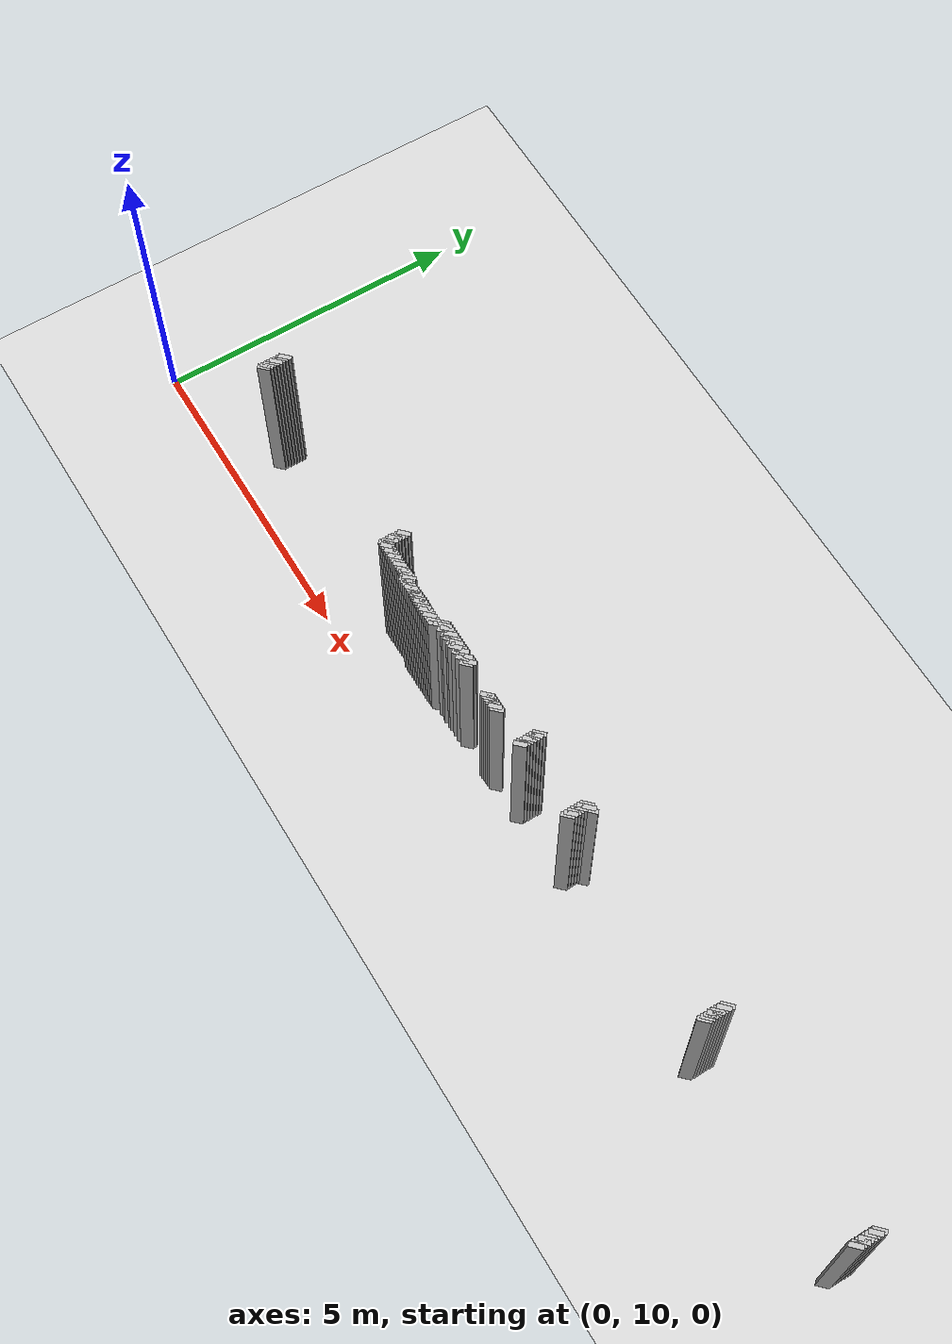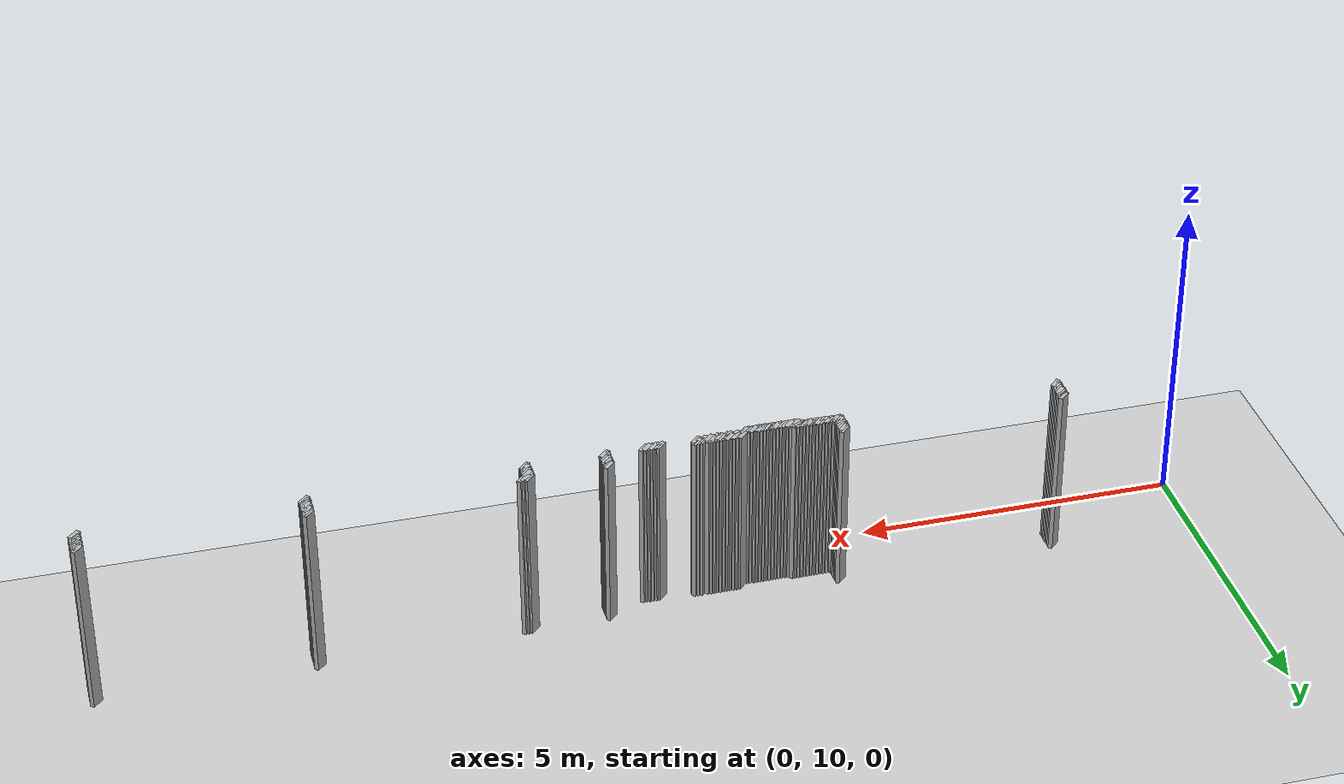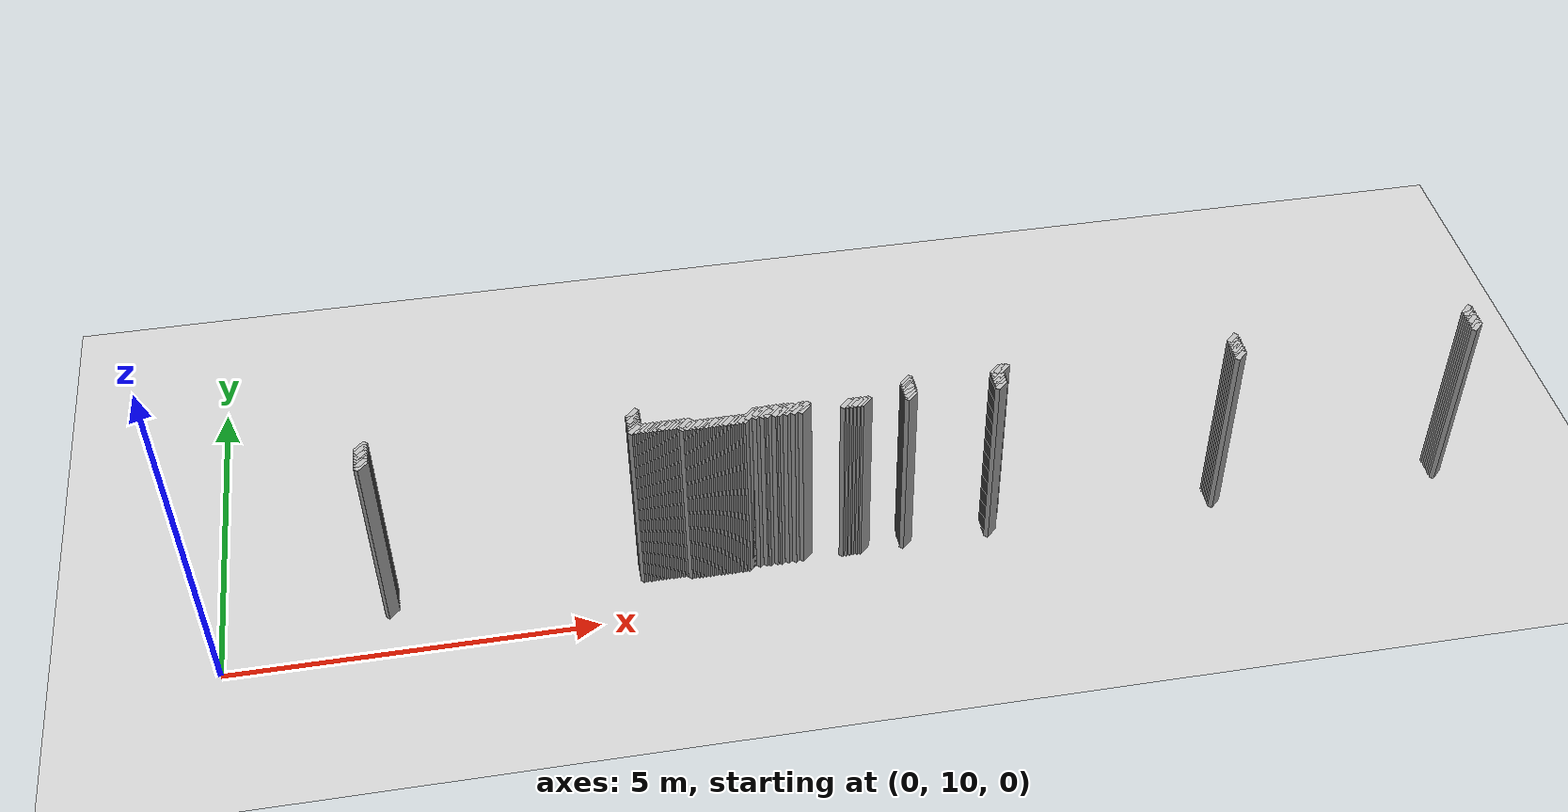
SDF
<sdf version="1.5">
 <world name="default">
  <include><uri>model://ground_plane</uri></include>
  <include><uri>model://sun</uri></include>
  <model name="grey_wall_1374">
   <static>1</static>
   <link name="link">
    <pose>13.75 11.100000000000001  1.4 0 0 -0.7853981633974483</pose>
    <collision name="collision">
     <geometry><box><size>0.07071067811865576 .2  2.8</size></box></geometry>
    </collision>
    <visual name="visual">
     <cast_shadows>0</cast_shadows>
     <geometry><box><size>0.07071067811865576 .2  2.8</size></box></geometry>
    </visual>
   </link>
  </model>
  <model name="grey_wall_1375">
   <static>1</static>
   <link name="link">
    <pose>17.05 11.100000000000001  1.4 0 0 -0.7853981633974838</pose>
    <collision name="collision">
     <geometry><box><size>0.07071067811865325 .2  2.8</size></box></geometry>
    </collision>
    <visual name="visual">
     <cast_shadows>0</cast_shadows>
     <geometry><box><size>0.07071067811865325 .2  2.8</size></box></geometry>
    </visual>
   </link>
  </model>
  <model name="grey_wall_1376">
   <static>1</static>
   <link name="link">
    <pose>2.25 11.05  1.4 0 0 -0.7853981633974572</pose>
    <collision name="collision">
     <geometry><box><size>0.07071067811865513 .2  2.8</size></box></geometry>
    </collision>
    <visual name="visual">
     <cast_shadows>0</cast_shadows>
     <geometry><box><size>0.07071067811865513 .2  2.8</size></box></geometry>
    </visual>
   </link>
  </model>
  <model name="grey_wall_1377">
   <static>1</static>
   <link name="link">
    <pose>5.7 11.05  1.4 0 0 -0.7853981633974483</pose>
    <collision name="collision">
     <geometry><box><size>0.07071067811865576 .2  2.8</size></box></geometry>
    </collision>
    <visual name="visual">
     <cast_shadows>0</cast_shadows>
     <geometry><box><size>0.07071067811865576 .2  2.8</size></box></geometry>
    </visual>
   </link>
  </model>
  <model name="grey_wall_1378">
   <static>1</static>
   <link name="link">
    <pose>9.3 11.05  1.4 0 0 -0.7853981633974483</pose>
    <collision name="collision">
     <geometry><box><size>0.07071067811865576 .2  2.8</size></box></geometry>
    </collision>
    <visual name="visual">
     <cast_shadows>0</cast_shadows>
     <geometry><box><size>0.07071067811865576 .2  2.8</size></box></geometry>
    </visual>
   </link>
  </model>
  <model name="grey_wall_1379">
   <static>1</static>
   <link name="link">
    <pose>10.5 11.05  1.4 0 0 -0.7853981633974483</pose>
    <collision name="collision">
     <geometry><box><size>0.07071067811865576 .2  2.8</size></box></geometry>
    </collision>
    <visual name="visual">
     <cast_shadows>0</cast_shadows>
     <geometry><box><size>0.07071067811865576 .2  2.8</size></box></geometry>
    </visual>
   </link>
  </model>
  <model name="grey_wall_1380">
   <static>1</static>
   <link name="link">
    <pose>10.55 11.05  1.4 0 0 -0.7853981633974483</pose>
    <collision name="collision">
     <geometry><box><size>0.07071067811865576 .2  2.8</size></box></geometry>
    </collision>
    <visual name="visual">
     <cast_shadows>0</cast_shadows>
     <geometry><box><size>0.07071067811865576 .2  2.8</size></box></geometry>
    </visual>
   </link>
  </model>
  <model name="grey_wall_1381">
   <static>1</static>
   <link name="link">
    <pose>10.600000000000001 11.05  1.4 0 0 -0.7853981633974483</pose>
    <collision name="collision">
     <geometry><box><size>0.07071067811865576 .2  2.8</size></box></geometry>
    </collision>
    <visual name="visual">
     <cast_shadows>0</cast_shadows>
     <geometry><box><size>0.07071067811865576 .2  2.8</size></box></geometry>
    </visual>
   </link>
  </model>
  <model name="grey_wall_1382">
   <static>1</static>
   <link name="link">
    <pose>13.75 11.05  1.4 0 0 -0.7853981633974483</pose>
    <collision name="collision">
     <geometry><box><size>0.07071067811865576 .2  2.8</size></box></geometry>
    </collision>
    <visual name="visual">
     <cast_shadows>0</cast_shadows>
     <geometry><box><size>0.07071067811865576 .2  2.8</size></box></geometry>
    </visual>
   </link>
  </model>
  <model name="grey_wall_1383">
   <static>1</static>
   <link name="link">
    <pose>17.05 11.05  1.4 0 0 -0.7853981633974838</pose>
    <collision name="collision">
     <geometry><box><size>0.07071067811865325 .2  2.8</size></box></geometry>
    </collision>
    <visual name="visual">
     <cast_shadows>0</cast_shadows>
     <geometry><box><size>0.07071067811865325 .2  2.8</size></box></geometry>
    </visual>
   </link>
  </model>
  <model name="grey_wall_1384">
   <static>1</static>
   <link name="link">
    <pose>2.25 11.0  1.4 0 0 -0.7853981633974572</pose>
    <collision name="collision">
     <geometry><box><size>0.07071067811865513 .2  2.8</size></box></geometry>
    </collision>
    <visual name="visual">
     <cast_shadows>0</cast_shadows>
     <geometry><box><size>0.07071067811865513 .2  2.8</size></box></geometry>
    </visual>
   </link>
  </model>
  <model name="grey_wall_1385">
   <static>1</static>
   <link name="link">
    <pose>5.7 11.0  1.4 0 0 -0.7853981633974483</pose>
    <collision name="collision">
     <geometry><box><size>0.07071067811865576 .2  2.8</size></box></geometry>
    </collision>
    <visual name="visual">
     <cast_shadows>0</cast_shadows>
     <geometry><box><size>0.07071067811865576 .2  2.8</size></box></geometry>
    </visual>
   </link>
  </model>
  <model name="grey_wall_1386">
   <static>1</static>
   <link name="link">
    <pose>9.3 11.0  1.4 0 0 -0.7853981633974483</pose>
    <collision name="collision">
     <geometry><box><size>0.07071067811865576 .2  2.8</size></box></geometry>
    </collision>
    <visual name="visual">
     <cast_shadows>0</cast_shadows>
     <geometry><box><size>0.07071067811865576 .2  2.8</size></box></geometry>
    </visual>
   </link>
  </model>
  <model name="grey_wall_1387">
   <static>1</static>
   <link name="link">
    <pose>10.5 11.0  1.4 0 0 -0.7853981633974483</pose>
    <collision name="collision">
     <geometry><box><size>0.07071067811865576 .2  2.8</size></box></geometry>
    </collision>
    <visual name="visual">
     <cast_shadows>0</cast_shadows>
     <geometry><box><size>0.07071067811865576 .2  2.8</size></box></geometry>
    </visual>
   </link>
  </model>
  <model name="grey_wall_1388">
   <static>1</static>
   <link name="link">
    <pose>13.75 11.0  1.4 0 0 -0.7853981633974483</pose>
    <collision name="collision">
     <geometry><box><size>0.07071067811865576 .2  2.8</size></box></geometry>
    </collision>
    <visual name="visual">
     <cast_shadows>0</cast_shadows>
     <geometry><box><size>0.07071067811865576 .2  2.8</size></box></geometry>
    </visual>
   </link>
  </model>
  <model name="grey_wall_1389">
   <static>1</static>
   <link name="link">
    <pose>17.05 11.0  1.4 0 0 -0.7853981633974838</pose>
    <collision name="collision">
     <geometry><box><size>0.07071067811865325 .2  2.8</size></box></geometry>
    </collision>
    <visual name="visual">
     <cast_shadows>0</cast_shadows>
     <geometry><box><size>0.07071067811865325 .2  2.8</size></box></geometry>
    </visual>
   </link>
  </model>
  <model name="grey_wall_1390">
   <static>1</static>
   <link name="link">
    <pose>2.25 10.950000000000001  1.4 0 0 -0.7853981633974572</pose>
    <collision name="collision">
     <geometry><box><size>0.07071067811865513 .2  2.8</size></box></geometry>
    </collision>
    <visual name="visual">
     <cast_shadows>0</cast_shadows>
     <geometry><box><size>0.07071067811865513 .2  2.8</size></box></geometry>
    </visual>
   </link>
  </model>
  <model name="grey_wall_1391">
   <static>1</static>
   <link name="link">
    <pose>5.7 10.950000000000001  1.4 0 0 -0.7853981633974483</pose>
    <collision name="collision">
     <geometry><box><size>0.07071067811865576 .2  2.8</size></box></geometry>
    </collision>
    <visual name="visual">
     <cast_shadows>0</cast_shadows>
     <geometry><box><size>0.07071067811865576 .2  2.8</size></box></geometry>
    </visual>
   </link>
  </model>
  <model name="grey_wall_1392">
   <static>1</static>
   <link name="link">
    <pose>9.3 10.950000000000001  1.4 0 0 -0.7853981633974483</pose>
    <collision name="collision">
     <geometry><box><size>0.07071067811865576 .2  2.8</size></box></geometry>
    </collision>
    <visual name="visual">
     <cast_shadows>0</cast_shadows>
     <geometry><box><size>0.07071067811865576 .2  2.8</size></box></geometry>
    </visual>
   </link>
  </model>
  <model name="grey_wall_1393">
   <static>1</static>
   <link name="link">
    <pose>10.5 10.950000000000001  1.4 0 0 -0.7853981633974483</pose>
    <collision name="collision">
     <geometry><box><size>0.07071067811865576 .2  2.8</size></box></geometry>
    </collision>
    <visual name="visual">
     <cast_shadows>0</cast_shadows>
     <geometry><box><size>0.07071067811865576 .2  2.8</size></box></geometry>
    </visual>
   </link>
  </model>
  <model name="grey_wall_1394">
   <static>1</static>
   <link name="link">
    <pose>13.75 10.950000000000001  1.4 0 0 -0.7853981633974483</pose>
    <collision name="collision">
     <geometry><box><size>0.07071067811865576 .2  2.8</size></box></geometry>
    </collision>
    <visual name="visual">
     <cast_shadows>0</cast_shadows>
     <geometry><box><size>0.07071067811865576 .2  2.8</size></box></geometry>
    </visual>
   </link>
  </model>
  <model name="grey_wall_1395">
   <static>1</static>
   <link name="link">
    <pose>17.05 10.950000000000001  1.4 0 0 -0.7853981633974838</pose>
    <collision name="collision">
     <geometry><box><size>0.07071067811865325 .2  2.8</size></box></geometry>
    </collision>
    <visual name="visual">
     <cast_shadows>0</cast_shadows>
     <geometry><box><size>0.07071067811865325 .2  2.8</size></box></geometry>
    </visual>
   </link>
  </model>
  <model name="grey_wall_1396">
   <static>1</static>
   <link name="link">
    <pose>2.25 10.9  1.4 0 0 -0.7853981633974572</pose>
    <collision name="collision">
     <geometry><box><size>0.07071067811865513 .2  2.8</size></box></geometry>
    </collision>
    <visual name="visual">
     <cast_shadows>0</cast_shadows>
     <geometry><box><size>0.07071067811865513 .2  2.8</size></box></geometry>
    </visual>
   </link>
  </model>
  <model name="grey_wall_1397">
   <static>1</static>
   <link name="link">
    <pose>5.7 10.9  1.4 0 0 -0.7853981633974483</pose>
    <collision name="collision">
     <geometry><box><size>0.07071067811865576 .2  2.8</size></box></geometry>
    </collision>
    <visual name="visual">
     <cast_shadows>0</cast_shadows>
     <geometry><box><size>0.07071067811865576 .2  2.8</size></box></geometry>
    </visual>
   </link>
  </model>
  <model name="grey_wall_1398">
   <static>1</static>
   <link name="link">
    <pose>9.3 10.9  1.4 0 0 -0.7853981633974483</pose>
    <collision name="collision">
     <geometry><box><size>0.07071067811865576 .2  2.8</size></box></geometry>
    </collision>
    <visual name="visual">
     <cast_shadows>0</cast_shadows>
     <geometry><box><size>0.07071067811865576 .2  2.8</size></box></geometry>
    </visual>
   </link>
  </model>
  <model name="grey_wall_1399">
   <static>1</static>
   <link name="link">
    <pose>10.5 10.9  1.4 0 0 -0.7853981633974483</pose>
    <collision name="collision">
     <geometry><box><size>0.07071067811865576 .2  2.8</size></box></geometry>
    </collision>
    <visual name="visual">
     <cast_shadows>0</cast_shadows>
     <geometry><box><size>0.07071067811865576 .2  2.8</size></box></geometry>
    </visual>
   </link>
  </model>
  <model name="grey_wall_1400">
   <static>1</static>
   <link name="link">
    <pose>13.75 10.9  1.4 0 0 -0.7853981633974483</pose>
    <collision name="collision">
     <geometry><box><size>0.07071067811865576 .2  2.8</size></box></geometry>
    </collision>
    <visual name="visual">
     <cast_shadows>0</cast_shadows>
     <geometry><box><size>0.07071067811865576 .2  2.8</size></box></geometry>
    </visual>
   </link>
  </model>
  <model name="grey_wall_1401">
   <static>1</static>
   <link name="link">
    <pose>17.05 10.9  1.4 0 0 -0.7853981633974838</pose>
    <collision name="collision">
     <geometry><box><size>0.07071067811865325 .2  2.8</size></box></geometry>
    </collision>
    <visual name="visual">
     <cast_shadows>0</cast_shadows>
     <geometry><box><size>0.07071067811865325 .2  2.8</size></box></geometry>
    </visual>
   </link>
  </model>
  <model name="grey_wall_1402">
   <static>1</static>
   <link name="link">
    <pose>2.25 10.850000000000001  1.4 0 0 -0.7853981633974572</pose>
    <collision name="collision">
     <geometry><box><size>0.07071067811865513 .2  2.8</size></box></geometry>
    </collision>
    <visual name="visual">
     <cast_shadows>0</cast_shadows>
     <geometry><box><size>0.07071067811865513 .2  2.8</size></box></geometry>
    </visual>
   </link>
  </model>
  <model name="grey_wall_1403">
   <static>1</static>
   <link name="link">
    <pose>5.7 10.850000000000001  1.4 0 0 -0.7853981633974483</pose>
    <collision name="collision">
     <geometry><box><size>0.07071067811865576 .2  2.8</size></box></geometry>
    </collision>
    <visual name="visual">
     <cast_shadows>0</cast_shadows>
     <geometry><box><size>0.07071067811865576 .2  2.8</size></box></geometry>
    </visual>
   </link>
  </model>
  <model name="grey_wall_1404">
   <static>1</static>
   <link name="link">
    <pose>9.3 10.850000000000001  1.4 0 0 -0.7853981633974483</pose>
    <collision name="collision">
     <geometry><box><size>0.07071067811865576 .2  2.8</size></box></geometry>
    </collision>
    <visual name="visual">
     <cast_shadows>0</cast_shadows>
     <geometry><box><size>0.07071067811865576 .2  2.8</size></box></geometry>
    </visual>
   </link>
  </model>
  <model name="grey_wall_1405">
   <static>1</static>
   <link name="link">
    <pose>10.5 10.850000000000001  1.4 0 0 -0.7853981633974483</pose>
    <collision name="collision">
     <geometry><box><size>0.07071067811865576 .2  2.8</size></box></geometry>
    </collision>
    <visual name="visual">
     <cast_shadows>0</cast_shadows>
     <geometry><box><size>0.07071067811865576 .2  2.8</size></box></geometry>
    </visual>
   </link>
  </model>
  <model name="grey_wall_1406">
   <static>1</static>
   <link name="link">
    <pose>13.75 10.850000000000001  1.4 0 0 -0.7853981633974483</pose>
    <collision name="collision">
     <geometry><box><size>0.07071067811865576 .2  2.8</size></box></geometry>
    </collision>
    <visual name="visual">
     <cast_shadows>0</cast_shadows>
     <geometry><box><size>0.07071067811865576 .2  2.8</size></box></geometry>
    </visual>
   </link>
  </model>
  <model name="grey_wall_1407">
   <static>1</static>
   <link name="link">
    <pose>17.05 10.850000000000001  1.4 0 0 -0.7853981633974838</pose>
    <collision name="collision">
     <geometry><box><size>0.07071067811865325 .2  2.8</size></box></geometry>
    </collision>
    <visual name="visual">
     <cast_shadows>0</cast_shadows>
     <geometry><box><size>0.07071067811865325 .2  2.8</size></box></geometry>
    </visual>
   </link>
  </model>
  <model name="grey_wall_1408">
   <static>1</static>
   <link name="link">
    <pose>2.25 10.8  1.4 0 0 -0.7853981633974572</pose>
    <collision name="collision">
     <geometry><box><size>0.07071067811865513 .2  2.8</size></box></geometry>
    </collision>
    <visual name="visual">
     <cast_shadows>0</cast_shadows>
     <geometry><box><size>0.07071067811865513 .2  2.8</size></box></geometry>
    </visual>
   </link>
  </model>
  <model name="grey_wall_1409">
   <static>1</static>
   <link name="link">
    <pose>5.7 10.8  1.4 0 0 -0.7853981633974483</pose>
    <collision name="collision">
     <geometry><box><size>0.07071067811865576 .2  2.8</size></box></geometry>
    </collision>
    <visual name="visual">
     <cast_shadows>0</cast_shadows>
     <geometry><box><size>0.07071067811865576 .2  2.8</size></box></geometry>
    </visual>
   </link>
  </model>
  <model name="grey_wall_1410">
   <static>1</static>
   <link name="link">
    <pose>7.2 10.8  1.4 0 0 -0.7853981633974483</pose>
    <collision name="collision">
     <geometry><box><size>0.07071067811865576 .2  2.8</size></box></geometry>
    </collision>
    <visual name="visual">
     <cast_shadows>0</cast_shadows>
     <geometry><box><size>0.07071067811865576 .2  2.8</size></box></geometry>
    </visual>
   </link>
  </model>
  <model name="grey_wall_1411">
   <static>1</static>
   <link name="link">
    <pose>7.25 10.8  1.4 0 0 -0.7853981633974483</pose>
    <collision name="collision">
     <geometry><box><size>0.07071067811865576 .2  2.8</size></box></geometry>
    </collision>
    <visual name="visual">
     <cast_shadows>0</cast_shadows>
     <geometry><box><size>0.07071067811865576 .2  2.8</size></box></geometry>
    </visual>
   </link>
  </model>
  <model name="grey_wall_1412">
   <static>1</static>
   <link name="link">
    <pose>7.300000000000001 10.8  1.4 0 0 -0.7853981633974483</pose>
    <collision name="collision">
     <geometry><box><size>0.07071067811865576 .2  2.8</size></box></geometry>
    </collision>
    <visual name="visual">
     <cast_shadows>0</cast_shadows>
     <geometry><box><size>0.07071067811865576 .2  2.8</size></box></geometry>
    </visual>
   </link>
  </model>
  <model name="grey_wall_1413">
   <static>1</static>
   <link name="link">
    <pose>7.3500000000000005 10.8  1.4 0 0 -0.7853981633974483</pose>
    <collision name="collision">
     <geometry><box><size>0.07071067811865576 .2  2.8</size></box></geometry>
    </collision>
    <visual name="visual">
     <cast_shadows>0</cast_shadows>
     <geometry><box><size>0.07071067811865576 .2  2.8</size></box></geometry>
    </visual>
   </link>
  </model>
  <model name="grey_wall_1414">
   <static>1</static>
   <link name="link">
    <pose>7.4 10.8  1.4 0 0 -0.7853981633974483</pose>
    <collision name="collision">
     <geometry><box><size>0.07071067811865576 .2  2.8</size></box></geometry>
    </collision>
    <visual name="visual">
     <cast_shadows>0</cast_shadows>
     <geometry><box><size>0.07071067811865576 .2  2.8</size></box></geometry>
    </visual>
   </link>
  </model>
  <model name="grey_wall_1415">
   <static>1</static>
   <link name="link">
    <pose>7.45 10.8  1.4 0 0 -0.7853981633974483</pose>
    <collision name="collision">
     <geometry><box><size>0.07071067811865576 .2  2.8</size></box></geometry>
    </collision>
    <visual name="visual">
     <cast_shadows>0</cast_shadows>
     <geometry><box><size>0.07071067811865576 .2  2.8</size></box></geometry>
    </visual>
   </link>
  </model>
  <model name="grey_wall_1416">
   <static>1</static>
   <link name="link">
    <pose>7.5 10.8  1.4 0 0 -0.7853981633974483</pose>
    <collision name="collision">
     <geometry><box><size>0.07071067811865576 .2  2.8</size></box></geometry>
    </collision>
    <visual name="visual">
     <cast_shadows>0</cast_shadows>
     <geometry><box><size>0.07071067811865576 .2  2.8</size></box></geometry>
    </visual>
   </link>
  </model>
  <model name="grey_wall_1417">
   <static>1</static>
   <link name="link">
    <pose>7.550000000000001 10.8  1.4 0 0 -0.7853981633974483</pose>
    <collision name="collision">
     <geometry><box><size>0.07071067811865576 .2  2.8</size></box></geometry>
    </collision>
    <visual name="visual">
     <cast_shadows>0</cast_shadows>
     <geometry><box><size>0.07071067811865576 .2  2.8</size></box></geometry>
    </visual>
   </link>
  </model>
  <model name="grey_wall_1418">
   <static>1</static>
   <link name="link">
    <pose>7.6000000000000005 10.8  1.4 0 0 -0.7853981633974483</pose>
    <collision name="collision">
     <geometry><box><size>0.07071067811865576 .2  2.8</size></box></geometry>
    </collision>
    <visual name="visual">
     <cast_shadows>0</cast_shadows>
     <geometry><box><size>0.07071067811865576 .2  2.8</size></box></geometry>
    </visual>
   </link>
  </model>
  <model name="grey_wall_1419">
   <static>1</static>
   <link name="link">
    <pose>7.65 10.8  1.4 0 0 -0.7853981633974483</pose>
    <collision name="collision">
     <geometry><box><size>0.07071067811865576 .2  2.8</size></box></geometry>
    </collision>
    <visual name="visual">
     <cast_shadows>0</cast_shadows>
     <geometry><box><size>0.07071067811865576 .2  2.8</size></box></geometry>
    </visual>
   </link>
  </model>
  <model name="grey_wall_1420">
   <static>1</static>
   <link name="link">
    <pose>7.7 10.8  1.4 0 0 -0.7853981633974483</pose>
    <collision name="collision">
     <geometry><box><size>0.07071067811865576 .2  2.8</size></box></geometry>
    </collision>
    <visual name="visual">
     <cast_shadows>0</cast_shadows>
     <geometry><box><size>0.07071067811865576 .2  2.8</size></box></geometry>
    </visual>
   </link>
  </model>
  <model name="grey_wall_1421">
   <static>1</static>
   <link name="link">
    <pose>7.800000000000001 10.8  1.4 0 0 -0.7853981633974483</pose>
    <collision name="collision">
     <geometry><box><size>0.07071067811865576 .2  2.8</size></box></geometry>
    </collision>
    <visual name="visual">
     <cast_shadows>0</cast_shadows>
     <geometry><box><size>0.07071067811865576 .2  2.8</size></box></geometry>
    </visual>
   </link>
  </model>
  <model name="grey_wall_1422">
   <static>1</static>
   <link name="link">
    <pose>7.8500000000000005 10.8  1.4 0 0 -0.7853981633974483</pose>
    <collision name="collision">
     <geometry><box><size>0.07071067811865576 .2  2.8</size></box></geometry>
    </collision>
    <visual name="visual">
     <cast_shadows>0</cast_shadows>
     <geometry><box><size>0.07071067811865576 .2  2.8</size></box></geometry>
    </visual>
   </link>
  </model>
  <model name="grey_wall_1423">
   <static>1</static>
   <link name="link">
    <pose>7.9 10.8  1.4 0 0 -0.7853981633974483</pose>
    <collision name="collision">
     <geometry><box><size>0.07071067811865576 .2  2.8</size></box></geometry>
    </collision>
    <visual name="visual">
     <cast_shadows>0</cast_shadows>
     <geometry><box><size>0.07071067811865576 .2  2.8</size></box></geometry>
    </visual>
   </link>
  </model>
  <model name="grey_wall_1424">
   <static>1</static>
   <link name="link">
    <pose>9.3 10.8  1.4 0 0 -0.7853981633974483</pose>
    <collision name="collision">
     <geometry><box><size>0.07071067811865576 .2  2.8</size></box></geometry>
    </collision>
    <visual name="visual">
     <cast_shadows>0</cast_shadows>
     <geometry><box><size>0.07071067811865576 .2  2.8</size></box></geometry>
    </visual>
   </link>
  </model>
  <model name="grey_wall_1425">
   <static>1</static>
   <link name="link">
    <pose>10.5 10.8  1.4 0 0 -0.7853981633974483</pose>
    <collision name="collision">
     <geometry><box><size>0.07071067811865576 .2  2.8</size></box></geometry>
    </collision>
    <visual name="visual">
     <cast_shadows>0</cast_shadows>
     <geometry><box><size>0.07071067811865576 .2  2.8</size></box></geometry>
    </visual>
   </link>
  </model>
  <model name="grey_wall_1426">
   <static>1</static>
   <link name="link">
    <pose>13.75 10.8  1.4 0 0 -0.7853981633974483</pose>
    <collision name="collision">
     <geometry><box><size>0.07071067811865576 .2  2.8</size></box></geometry>
    </collision>
    <visual name="visual">
     <cast_shadows>0</cast_shadows>
     <geometry><box><size>0.07071067811865576 .2  2.8</size></box></geometry>
    </visual>
   </link>
  </model>
  <model name="grey_wall_1427">
   <static>1</static>
   <link name="link">
    <pose>17.05 10.8  1.4 0 0 -0.7853981633974838</pose>
    <collision name="collision">
     <geometry><box><size>0.07071067811865325 .2  2.8</size></box></geometry>
    </collision>
    <visual name="visual">
     <cast_shadows>0</cast_shadows>
     <geometry><box><size>0.07071067811865325 .2  2.8</size></box></geometry>
    </visual>
   </link>
  </model>
  <model name="grey_wall_1428">
   <static>1</static>
   <link name="link">
    <pose>2.25 10.75  1.4 0 0 -0.7853981633974572</pose>
    <collision name="collision">
     <geometry><box><size>0.07071067811865513 .2  2.8</size></box></geometry>
    </collision>
    <visual name="visual">
     <cast_shadows>0</cast_shadows>
     <geometry><box><size>0.07071067811865513 .2  2.8</size></box></geometry>
    </visual>
   </link>
  </model>
  <model name="grey_wall_1429">
   <static>1</static>
   <link name="link">
    <pose>5.7 10.75  1.4 0 0 -0.7853981633974483</pose>
    <collision name="collision">
     <geometry><box><size>0.07071067811865576 .2  2.8</size></box></geometry>
    </collision>
    <visual name="visual">
     <cast_shadows>0</cast_shadows>
     <geometry><box><size>0.07071067811865576 .2  2.8</size></box></geometry>
    </visual>
   </link>
  </model>
  <model name="grey_wall_1430">
   <static>1</static>
   <link name="link">
    <pose>5.75 10.75  1.4 0 0 -0.7853981633974483</pose>
    <collision name="collision">
     <geometry><box><size>0.07071067811865576 .2  2.8</size></box></geometry>
    </collision>
    <visual name="visual">
     <cast_shadows>0</cast_shadows>
     <geometry><box><size>0.07071067811865576 .2  2.8</size></box></geometry>
    </visual>
   </link>
  </model>
  <model name="grey_wall_1431">
   <static>1</static>
   <link name="link">
    <pose>5.800000000000001 10.75  1.4 0 0 -0.7853981633974483</pose>
    <collision name="collision">
     <geometry><box><size>0.07071067811865576 .2  2.8</size></box></geometry>
    </collision>
    <visual name="visual">
     <cast_shadows>0</cast_shadows>
     <geometry><box><size>0.07071067811865576 .2  2.8</size></box></geometry>
    </visual>
   </link>
  </model>
  <model name="grey_wall_1432">
   <static>1</static>
   <link name="link">
    <pose>5.8500000000000005 10.75  1.4 0 0 -0.7853981633974483</pose>
    <collision name="collision">
     <geometry><box><size>0.07071067811865576 .2  2.8</size></box></geometry>
    </collision>
    <visual name="visual">
     <cast_shadows>0</cast_shadows>
     <geometry><box><size>0.07071067811865576 .2  2.8</size></box></geometry>
    </visual>
   </link>
  </model>
  <model name="grey_wall_1433">
   <static>1</static>
   <link name="link">
    <pose>5.9 10.75  1.4 0 0 -0.7853981633974483</pose>
    <collision name="collision">
     <geometry><box><size>0.07071067811865576 .2  2.8</size></box></geometry>
    </collision>
    <visual name="visual">
     <cast_shadows>0</cast_shadows>
     <geometry><box><size>0.07071067811865576 .2  2.8</size></box></geometry>
    </visual>
   </link>
  </model>
  <model name="grey_wall_1434">
   <static>1</static>
   <link name="link">
    <pose>5.95 10.75  1.4 0 0 -0.7853981633974483</pose>
    <collision name="collision">
     <geometry><box><size>0.07071067811865576 .2  2.8</size></box></geometry>
    </collision>
    <visual name="visual">
     <cast_shadows>0</cast_shadows>
     <geometry><box><size>0.07071067811865576 .2  2.8</size></box></geometry>
    </visual>
   </link>
  </model>
  <model name="grey_wall_1435">
   <static>1</static>
   <link name="link">
    <pose>6.0 10.75  1.4 0 0 -0.7853981633974483</pose>
    <collision name="collision">
     <geometry><box><size>0.07071067811865576 .2  2.8</size></box></geometry>
    </collision>
    <visual name="visual">
     <cast_shadows>0</cast_shadows>
     <geometry><box><size>0.07071067811865576 .2  2.8</size></box></geometry>
    </visual>
   </link>
  </model>
  <model name="grey_wall_1436">
   <static>1</static>
   <link name="link">
    <pose>6.050000000000001 10.75  1.4 0 0 -0.7853981633974483</pose>
    <collision name="collision">
     <geometry><box><size>0.07071067811865576 .2  2.8</size></box></geometry>
    </collision>
    <visual name="visual">
     <cast_shadows>0</cast_shadows>
     <geometry><box><size>0.07071067811865576 .2  2.8</size></box></geometry>
    </visual>
   </link>
  </model>
  <model name="grey_wall_1437">
   <static>1</static>
   <link name="link">
    <pose>6.1000000000000005 10.75  1.4 0 0 -0.7853981633974483</pose>
    <collision name="collision">
     <geometry><box><size>0.07071067811865576 .2  2.8</size></box></geometry>
    </collision>
    <visual name="visual">
     <cast_shadows>0</cast_shadows>
     <geometry><box><size>0.07071067811865576 .2  2.8</size></box></geometry>
    </visual>
   </link>
  </model>
  <model name="grey_wall_1438">
   <static>1</static>
   <link name="link">
    <pose>6.15 10.75  1.4 0 0 -0.7853981633974483</pose>
    <collision name="collision">
     <geometry><box><size>0.07071067811865576 .2  2.8</size></box></geometry>
    </collision>
    <visual name="visual">
     <cast_shadows>0</cast_shadows>
     <geometry><box><size>0.07071067811865576 .2  2.8</size></box></geometry>
    </visual>
   </link>
  </model>
  <model name="grey_wall_1439">
   <static>1</static>
   <link name="link">
    <pose>6.2 10.75  1.4 0 0 -0.7853981633974483</pose>
    <collision name="collision">
     <geometry><box><size>0.07071067811865576 .2  2.8</size></box></geometry>
    </collision>
    <visual name="visual">
     <cast_shadows>0</cast_shadows>
     <geometry><box><size>0.07071067811865576 .2  2.8</size></box></geometry>
    </visual>
   </link>
  </model>
  <model name="grey_wall_1440">
   <static>1</static>
   <link name="link">
    <pose>6.25 10.75  1.4 0 0 -0.7853981633974483</pose>
    <collision name="collision">
     <geometry><box><size>0.07071067811865576 .2  2.8</size></box></geometry>
    </collision>
    <visual name="visual">
     <cast_shadows>0</cast_shadows>
     <geometry><box><size>0.07071067811865576 .2  2.8</size></box></geometry>
    </visual>
   </link>
  </model>
  <model name="grey_wall_1441">
   <static>1</static>
   <link name="link">
    <pose>6.300000000000001 10.75  1.4 0 0 -0.7853981633974483</pose>
    <collision name="collision">
     <geometry><box><size>0.07071067811865576 .2  2.8</size></box></geometry>
    </collision>
    <visual name="visual">
     <cast_shadows>0</cast_shadows>
     <geometry><box><size>0.07071067811865576 .2  2.8</size></box></geometry>
    </visual>
   </link>
  </model>
  <model name="grey_wall_1442">
   <static>1</static>
   <link name="link">
    <pose>6.3500000000000005 10.75  1.4 0 0 -0.7853981633974483</pose>
    <collision name="collision">
     <geometry><box><size>0.07071067811865576 .2  2.8</size></box></geometry>
    </collision>
    <visual name="visual">
     <cast_shadows>0</cast_shadows>
     <geometry><box><size>0.07071067811865576 .2  2.8</size></box></geometry>
    </visual>
   </link>
  </model>
  <model name="grey_wall_1443">
   <static>1</static>
   <link name="link">
    <pose>7.2 10.75  1.4 0 0 -0.7853981633974483</pose>
    <collision name="collision">
     <geometry><box><size>0.07071067811865576 .2  2.8</size></box></geometry>
    </collision>
    <visual name="visual">
     <cast_shadows>0</cast_shadows>
     <geometry><box><size>0.07071067811865576 .2  2.8</size></box></geometry>
    </visual>
   </link>
  </model>
  <model name="grey_wall_1444">
   <static>1</static>
   <link name="link">
    <pose>7.300000000000001 10.75  1.4 0 0 -0.7853981633974483</pose>
    <collision name="collision">
     <geometry><box><size>0.07071067811865576 .2  2.8</size></box></geometry>
    </collision>
    <visual name="visual">
     <cast_shadows>0</cast_shadows>
     <geometry><box><size>0.07071067811865576 .2  2.8</size></box></geometry>
    </visual>
   </link>
  </model>
  <model name="grey_wall_1445">
   <static>1</static>
   <link name="link">
    <pose>7.4 10.75  1.4 0 0 -0.7853981633974483</pose>
    <collision name="collision">
     <geometry><box><size>0.07071067811865576 .2  2.8</size></box></geometry>
    </collision>
    <visual name="visual">
     <cast_shadows>0</cast_shadows>
     <geometry><box><size>0.07071067811865576 .2  2.8</size></box></geometry>
    </visual>
   </link>
  </model>
  <model name="grey_wall_1446">
   <static>1</static>
   <link name="link">
    <pose>7.45 10.75  1.4 0 0 -0.7853981633974483</pose>
    <collision name="collision">
     <geometry><box><size>0.07071067811865576 .2  2.8</size></box></geometry>
    </collision>
    <visual name="visual">
     <cast_shadows>0</cast_shadows>
     <geometry><box><size>0.07071067811865576 .2  2.8</size></box></geometry>
    </visual>
   </link>
  </model>
  <model name="grey_wall_1447">
   <static>1</static>
   <link name="link">
    <pose>7.550000000000001 10.75  1.4 0 0 -0.7853981633974483</pose>
    <collision name="collision">
     <geometry><box><size>0.07071067811865576 .2  2.8</size></box></geometry>
    </collision>
    <visual name="visual">
     <cast_shadows>0</cast_shadows>
     <geometry><box><size>0.07071067811865576 .2  2.8</size></box></geometry>
    </visual>
   </link>
  </model>
  <model name="grey_wall_1448">
   <static>1</static>
   <link name="link">
    <pose>7.6000000000000005 10.75  1.4 0 0 -0.7853981633974483</pose>
    <collision name="collision">
     <geometry><box><size>0.07071067811865576 .2  2.8</size></box></geometry>
    </collision>
    <visual name="visual">
     <cast_shadows>0</cast_shadows>
     <geometry><box><size>0.07071067811865576 .2  2.8</size></box></geometry>
    </visual>
   </link>
  </model>
  <model name="grey_wall_1449">
   <static>1</static>
   <link name="link">
    <pose>7.7 10.75  1.4 0 0 -0.7853981633974483</pose>
    <collision name="collision">
     <geometry><box><size>0.07071067811865576 .2  2.8</size></box></geometry>
    </collision>
    <visual name="visual">
     <cast_shadows>0</cast_shadows>
     <geometry><box><size>0.07071067811865576 .2  2.8</size></box></geometry>
    </visual>
   </link>
  </model>
  <model name="grey_wall_1450">
   <static>1</static>
   <link name="link">
    <pose>7.800000000000001 10.75  1.4 0 0 -0.7853981633974483</pose>
    <collision name="collision">
     <geometry><box><size>0.07071067811865576 .2  2.8</size></box></geometry>
    </collision>
    <visual name="visual">
     <cast_shadows>0</cast_shadows>
     <geometry><box><size>0.07071067811865576 .2  2.8</size></box></geometry>
    </visual>
   </link>
  </model>
  <model name="grey_wall_1451">
   <static>1</static>
   <link name="link">
    <pose>7.9 10.75  1.4 0 0 -0.7853981633974483</pose>
    <collision name="collision">
     <geometry><box><size>0.07071067811865576 .2  2.8</size></box></geometry>
    </collision>
    <visual name="visual">
     <cast_shadows>0</cast_shadows>
     <geometry><box><size>0.07071067811865576 .2  2.8</size></box></geometry>
    </visual>
   </link>
  </model>
  <model name="grey_wall_1452">
   <static>1</static>
   <link name="link">
    <pose>8.450000000000001 10.75  1.4 0 0 -0.7853981633974483</pose>
    <collision name="collision">
     <geometry><box><size>0.07071067811865576 .2  2.8</size></box></geometry>
    </collision>
    <visual name="visual">
     <cast_shadows>0</cast_shadows>
     <geometry><box><size>0.07071067811865576 .2  2.8</size></box></geometry>
    </visual>
   </link>
  </model>
  <model name="grey_wall_1453">
   <static>1</static>
   <link name="link">
    <pose>8.5 10.75  1.4 0 0 -0.7853981633974483</pose>
    <collision name="collision">
     <geometry><box><size>0.07071067811865576 .2  2.8</size></box></geometry>
    </collision>
    <visual name="visual">
     <cast_shadows>0</cast_shadows>
     <geometry><box><size>0.07071067811865576 .2  2.8</size></box></geometry>
    </visual>
   </link>
  </model>
  <model name="grey_wall_1454">
   <static>1</static>
   <link name="link">
    <pose>8.55 10.75  1.4 0 0 -0.7853981633974483</pose>
    <collision name="collision">
     <geometry><box><size>0.07071067811865576 .2  2.8</size></box></geometry>
    </collision>
    <visual name="visual">
     <cast_shadows>0</cast_shadows>
     <geometry><box><size>0.07071067811865576 .2  2.8</size></box></geometry>
    </visual>
   </link>
  </model>
  <model name="grey_wall_1455">
   <static>1</static>
   <link name="link">
    <pose>8.6 10.75  1.4 0 0 -0.7853981633974483</pose>
    <collision name="collision">
     <geometry><box><size>0.07071067811865576 .2  2.8</size></box></geometry>
    </collision>
    <visual name="visual">
     <cast_shadows>0</cast_shadows>
     <geometry><box><size>0.07071067811865576 .2  2.8</size></box></geometry>
    </visual>
   </link>
  </model>
  <model name="grey_wall_1456">
   <static>1</static>
   <link name="link">
    <pose>8.65 10.75  1.4 0 0 -0.7853981633974483</pose>
    <collision name="collision">
     <geometry><box><size>0.07071067811865576 .2  2.8</size></box></geometry>
    </collision>
    <visual name="visual">
     <cast_shadows>0</cast_shadows>
     <geometry><box><size>0.07071067811865576 .2  2.8</size></box></geometry>
    </visual>
   </link>
  </model>
  <model name="grey_wall_1457">
   <static>1</static>
   <link name="link">
    <pose>8.700000000000001 10.75  1.4 0 0 -0.7853981633974483</pose>
    <collision name="collision">
     <geometry><box><size>0.07071067811865576 .2  2.8</size></box></geometry>
    </collision>
    <visual name="visual">
     <cast_shadows>0</cast_shadows>
     <geometry><box><size>0.07071067811865576 .2  2.8</size></box></geometry>
    </visual>
   </link>
  </model>
  <model name="grey_wall_1458">
   <static>1</static>
   <link name="link">
    <pose>9.3 10.75  1.4 0 0 -0.7853981633974483</pose>
    <collision name="collision">
     <geometry><box><size>0.07071067811865576 .2  2.8</size></box></geometry>
    </collision>
    <visual name="visual">
     <cast_shadows>0</cast_shadows>
     <geometry><box><size>0.07071067811865576 .2  2.8</size></box></geometry>
    </visual>
   </link>
  </model>
  <model name="grey_wall_1459">
   <static>1</static>
   <link name="link">
    <pose>10.5 10.75  1.4 0 0 -0.7853981633974483</pose>
    <collision name="collision">
     <geometry><box><size>0.07071067811865576 .2  2.8</size></box></geometry>
    </collision>
    <visual name="visual">
     <cast_shadows>0</cast_shadows>
     <geometry><box><size>0.07071067811865576 .2  2.8</size></box></geometry>
    </visual>
   </link>
  </model>
  <model name="grey_wall_1460">
   <static>1</static>
   <link name="link">
    <pose>13.75 10.75  1.4 0 0 -0.7853981633974483</pose>
    <collision name="collision">
     <geometry><box><size>0.07071067811865576 .2  2.8</size></box></geometry>
    </collision>
    <visual name="visual">
     <cast_shadows>0</cast_shadows>
     <geometry><box><size>0.07071067811865576 .2  2.8</size></box></geometry>
    </visual>
   </link>
  </model>
  <model name="grey_wall_1461">
   <static>1</static>
   <link name="link">
    <pose>17.05 10.75  1.4 0 0 -0.7853981633974838</pose>
    <collision name="collision">
     <geometry><box><size>0.07071067811865325 .2  2.8</size></box></geometry>
    </collision>
    <visual name="visual">
     <cast_shadows>0</cast_shadows>
     <geometry><box><size>0.07071067811865325 .2  2.8</size></box></geometry>
    </visual>
   </link>
  </model>
  <model name="grey_wall_1462">
   <static>1</static>
   <link name="link">
    <pose>2.25 10.700000000000001  1.4 0 0 -0.7853981633974572</pose>
    <collision name="collision">
     <geometry><box><size>0.07071067811865513 .2  2.8</size></box></geometry>
    </collision>
    <visual name="visual">
     <cast_shadows>0</cast_shadows>
     <geometry><box><size>0.07071067811865513 .2  2.8</size></box></geometry>
    </visual>
   </link>
  </model>
  <model name="grey_wall_1463">
   <static>1</static>
   <link name="link">
    <pose>6.3500000000000005 10.700000000000001  1.4 0 0 -0.7853981633974483</pose>
    <collision name="collision">
     <geometry><box><size>0.07071067811865576 .2  2.8</size></box></geometry>
    </collision>
    <visual name="visual">
     <cast_shadows>0</cast_shadows>
     <geometry><box><size>0.07071067811865576 .2  2.8</size></box></geometry>
    </visual>
   </link>
  </model>
  <model name="grey_wall_1464">
   <static>1</static>
   <link name="link">
    <pose>6.4 10.700000000000001  1.4 0 0 -0.7853981633974483</pose>
    <collision name="collision">
     <geometry><box><size>0.07071067811865576 .2  2.8</size></box></geometry>
    </collision>
    <visual name="visual">
     <cast_shadows>0</cast_shadows>
     <geometry><box><size>0.07071067811865576 .2  2.8</size></box></geometry>
    </visual>
   </link>
  </model>
  <model name="grey_wall_1465">
   <static>1</static>
   <link name="link">
    <pose>6.45 10.700000000000001  1.4 0 0 -0.7853981633974483</pose>
    <collision name="collision">
     <geometry><box><size>0.07071067811865576 .2  2.8</size></box></geometry>
    </collision>
    <visual name="visual">
     <cast_shadows>0</cast_shadows>
     <geometry><box><size>0.07071067811865576 .2  2.8</size></box></geometry>
    </visual>
   </link>
  </model>
  <model name="grey_wall_1466">
   <static>1</static>
   <link name="link">
    <pose>6.5 10.700000000000001  1.4 0 0 -0.7853981633974483</pose>
    <collision name="collision">
     <geometry><box><size>0.07071067811865576 .2  2.8</size></box></geometry>
    </collision>
    <visual name="visual">
     <cast_shadows>0</cast_shadows>
     <geometry><box><size>0.07071067811865576 .2  2.8</size></box></geometry>
    </visual>
   </link>
  </model>
  <model name="grey_wall_1467">
   <static>1</static>
   <link name="link">
    <pose>6.550000000000001 10.700000000000001  1.4 0 0 -0.7853981633974483</pose>
    <collision name="collision">
     <geometry><box><size>0.07071067811865576 .2  2.8</size></box></geometry>
    </collision>
    <visual name="visual">
     <cast_shadows>0</cast_shadows>
     <geometry><box><size>0.07071067811865576 .2  2.8</size></box></geometry>
    </visual>
   </link>
  </model>
  <model name="grey_wall_1468">
   <static>1</static>
   <link name="link">
    <pose>6.6000000000000005 10.700000000000001  1.4 0 0 -0.7853981633974483</pose>
    <collision name="collision">
     <geometry><box><size>0.07071067811865576 .2  2.8</size></box></geometry>
    </collision>
    <visual name="visual">
     <cast_shadows>0</cast_shadows>
     <geometry><box><size>0.07071067811865576 .2  2.8</size></box></geometry>
    </visual>
   </link>
  </model>
  <model name="grey_wall_1469">
   <static>1</static>
   <link name="link">
    <pose>6.65 10.700000000000001  1.4 0 0 -0.7853981633974483</pose>
    <collision name="collision">
     <geometry><box><size>0.07071067811865576 .2  2.8</size></box></geometry>
    </collision>
    <visual name="visual">
     <cast_shadows>0</cast_shadows>
     <geometry><box><size>0.07071067811865576 .2  2.8</size></box></geometry>
    </visual>
   </link>
  </model>
  <model name="grey_wall_1470">
   <static>1</static>
   <link name="link">
    <pose>6.7 10.700000000000001  1.4 0 0 -0.7853981633974483</pose>
    <collision name="collision">
     <geometry><box><size>0.07071067811865576 .2  2.8</size></box></geometry>
    </collision>
    <visual name="visual">
     <cast_shadows>0</cast_shadows>
     <geometry><box><size>0.07071067811865576 .2  2.8</size></box></geometry>
    </visual>
   </link>
  </model>
  <model name="grey_wall_1471">
   <static>1</static>
   <link name="link">
    <pose>6.75 10.700000000000001  1.4 0 0 -0.7853981633974483</pose>
    <collision name="collision">
     <geometry><box><size>0.07071067811865576 .2  2.8</size></box></geometry>
    </collision>
    <visual name="visual">
     <cast_shadows>0</cast_shadows>
     <geometry><box><size>0.07071067811865576 .2  2.8</size></box></geometry>
    </visual>
   </link>
  </model>
  <model name="grey_wall_1472">
   <static>1</static>
   <link name="link">
    <pose>6.800000000000001 10.700000000000001  1.4 0 0 -0.7853981633974483</pose>
    <collision name="collision">
     <geometry><box><size>0.07071067811865576 .2  2.8</size></box></geometry>
    </collision>
    <visual name="visual">
     <cast_shadows>0</cast_shadows>
     <geometry><box><size>0.07071067811865576 .2  2.8</size></box></geometry>
    </visual>
   </link>
  </model>
  <model name="grey_wall_1473">
   <static>1</static>
   <link name="link">
    <pose>6.8500000000000005 10.700000000000001  1.4 0 0 -0.7853981633974483</pose>
    <collision name="collision">
     <geometry><box><size>0.07071067811865576 .2  2.8</size></box></geometry>
    </collision>
    <visual name="visual">
     <cast_shadows>0</cast_shadows>
     <geometry><box><size>0.07071067811865576 .2  2.8</size></box></geometry>
    </visual>
   </link>
  </model>
  <model name="grey_wall_1474">
   <static>1</static>
   <link name="link">
    <pose>6.9 10.700000000000001  1.4 0 0 -0.7853981633974483</pose>
    <collision name="collision">
     <geometry><box><size>0.07071067811865576 .2  2.8</size></box></geometry>
    </collision>
    <visual name="visual">
     <cast_shadows>0</cast_shadows>
     <geometry><box><size>0.07071067811865576 .2  2.8</size></box></geometry>
    </visual>
   </link>
  </model>
  <model name="grey_wall_1475">
   <static>1</static>
   <link name="link">
    <pose>6.95 10.700000000000001  1.4 0 0 -0.7853981633974483</pose>
    <collision name="collision">
     <geometry><box><size>0.07071067811865576 .2  2.8</size></box></geometry>
    </collision>
    <visual name="visual">
     <cast_shadows>0</cast_shadows>
     <geometry><box><size>0.07071067811865576 .2  2.8</size></box></geometry>
    </visual>
   </link>
  </model>
  <model name="grey_wall_1476">
   <static>1</static>
   <link name="link">
    <pose>7.0 10.700000000000001  1.4 0 0 -0.7853981633974483</pose>
    <collision name="collision">
     <geometry><box><size>0.07071067811865576 .2  2.8</size></box></geometry>
    </collision>
    <visual name="visual">
     <cast_shadows>0</cast_shadows>
     <geometry><box><size>0.07071067811865576 .2  2.8</size></box></geometry>
    </visual>
   </link>
  </model>
  <model name="grey_wall_1477">
   <static>1</static>
   <link name="link">
    <pose>7.050000000000001 10.700000000000001  1.4 0 0 -0.7853981633974483</pose>
    <collision name="collision">
     <geometry><box><size>0.07071067811865576 .2  2.8</size></box></geometry>
    </collision>
    <visual name="visual">
     <cast_shadows>0</cast_shadows>
     <geometry><box><size>0.07071067811865576 .2  2.8</size></box></geometry>
    </visual>
   </link>
  </model>
  <model name="grey_wall_1478">
   <static>1</static>
   <link name="link">
    <pose>7.1000000000000005 10.700000000000001  1.4 0 0 -0.7853981633974483</pose>
    <collision name="collision">
     <geometry><box><size>0.07071067811865576 .2  2.8</size></box></geometry>
    </collision>
    <visual name="visual">
     <cast_shadows>0</cast_shadows>
     <geometry><box><size>0.07071067811865576 .2  2.8</size></box></geometry>
    </visual>
   </link>
  </model>
  <model name="grey_wall_1479">
   <static>1</static>
   <link name="link">
    <pose>7.15 10.700000000000001  1.4 0 0 -0.7853981633974483</pose>
    <collision name="collision">
     <geometry><box><size>0.07071067811865576 .2  2.8</size></box></geometry>
    </collision>
    <visual name="visual">
     <cast_shadows>0</cast_shadows>
     <geometry><box><size>0.07071067811865576 .2  2.8</size></box></geometry>
    </visual>
   </link>
  </model>
 </world>
</sdf>
